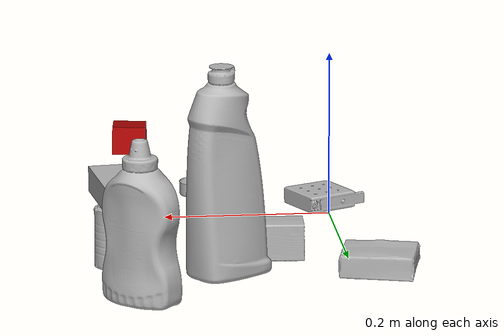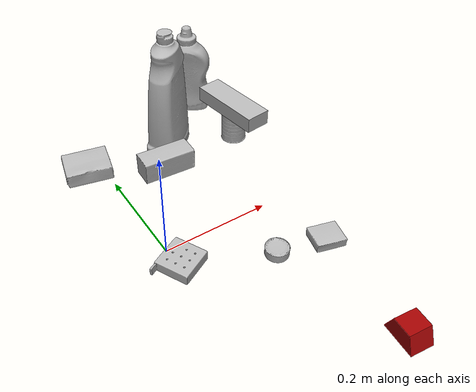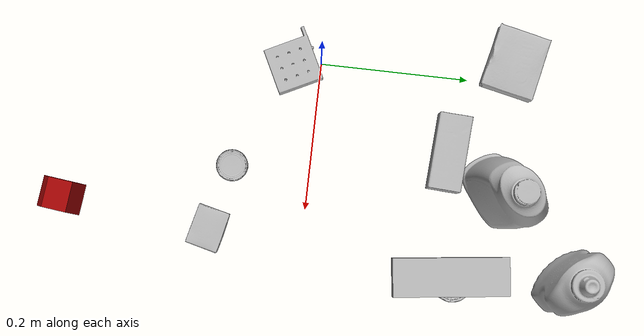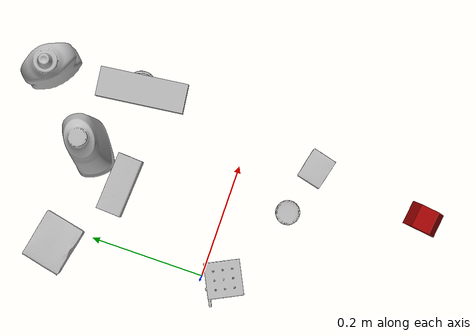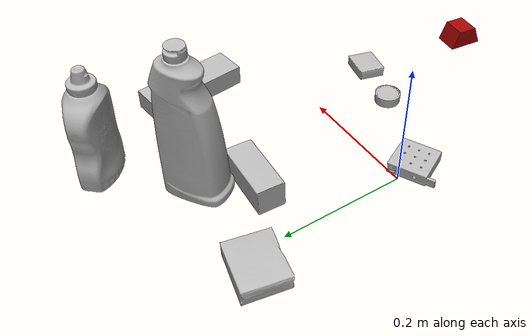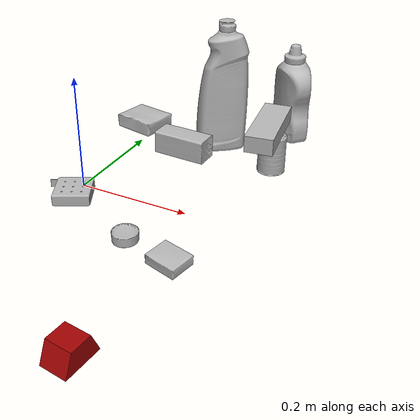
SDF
<sdf version="1.4">
  <world name="default">
    <light name="light1" type="point">
      <pose>0 0 1 0 0 0</pose>
      <diffuse>3 3 3 1</diffuse>
      <specular>3 3 3 1</specular>
    </light>
    <light name="light2" type="point">
      <pose>0 0.5 2 0 0 0</pose>
      <diffuse>1 1 1 1</diffuse>
      <specular>1 1 1 1</specular>
    </light>
    <light name="light3" type="point">
      <pose>0 0.5 2 0 0 0</pose>
      <diffuse>3 3 3 1</diffuse>
      <specular>3 3 3 1</specular>
    </light>
    <scene>
      <ambient>0.7 0.7 0.7</ambient>
    </scene>
    <model name="bottle1">
      <link name="link_bottle1">
        <collision name="default">
          <geometry>
            <mesh>
              <uri>model://mustard_bottle/collision_meshes/collision.obj</uri>
              <scale>1.0 1.0 1.0</scale>
            </mesh>
          </geometry>
          <surface>
            <friction>
              <ode>
                <mu>0.5</mu>
                <mu2>0.5</mu2>
              </ode>
            </friction>
          <contact>
        <ode>
            <max_vel>0</max_vel>
            <min_depth>0.0001</min_depth>
            <kp>1e8</kp>
        </ode>
    </contact></surface>
        </collision>
        <visual name="default">
          <geometry>
            <mesh>
              <uri>model://mustard_bottle/visual_meshes/visual.dae</uri>
              <scale>1.0 1.0 1.0</scale>
            </mesh>
          </geometry>
        </visual>
        <inertial>
          <mass>0.6762011647224426</mass>
          <pose>0.0005032454500906169 -0.00015647402324248105 -0.0174757931381464 0.0004182330054410876 0.0009465793907204819 0.02485376893997312</pose>
          <inertia>
            <ixx>0.001877718</ixx>
            <iyy>0.0016475386</iyy>
            <izz>0.0004948735</izz>
            <ixy>0</ixy>
            <ixz>0</ixz>
            <iyz>0</iyz>
          </inertia>
        </inertial>
      </link>
      <pose>0.25668439269065857 0.3574558198451996 0.09583088755607605 -0.012051313182601855 -0.004888878832031105 -2.3371418132859554</pose>
    </model>
    <model name="bottle2">
      <link name="link_bottle2">
        <collision name="default">
          <geometry>
            <mesh>
              <uri>model://bleach_cleanser/collision_meshes/collision.obj</uri>
              <scale>1.0 1.0 1.0</scale>
            </mesh>
          </geometry>
          <surface>
            <friction>
              <ode>
                <mu>0.5</mu>
                <mu2>0.5</mu2>
              </ode>
            </friction>
          <contact>
        <ode>
            <max_vel>0</max_vel>
            <min_depth>0.0001</min_depth>
            <kp>1e8</kp>
        </ode>
    </contact></surface>
        </collision>
        <visual name="default">
          <geometry>
            <mesh>
              <uri>model://bleach_cleanser/visual_meshes/visual.dae</uri>
              <scale>1.0 1.0 1.0</scale>
            </mesh>
          </geometry>
        </visual>
        <inertial>
          <mass>1.3947629928588867</mass>
          <pose>0.00012193183647468686 0.0037838828284293413 -0.02442161738872528 -0.07381670616230765 0.000420115363335565 -0.006875068774372656</pose>
          <inertia>
            <ixx>0.0067885136</ixx>
            <iyy>0.006325901</iyy>
            <izz>0.0011606595</izz>
            <ixy>0</ixy>
            <ixz>0</ixz>
            <iyz>0</iyz>
          </inertia>
        </inertial>
      </link>
      <pose>0.1477469950914383 0.2531247138977051 0.12578415870666504 -0.00019973261770149628 1.700003804728437e-05 -0.9618199236573007</pose>
    </model>
    <model name="toy1">
      <link name="link_toy1">
        <collision name="default">
          <geometry>
            <mesh>
              <uri>model://nine_hole_peg_test/collision_meshes/collision.obj</uri>
              <scale>0.5 0.5 0.5</scale>
            </mesh>
          </geometry>
          <surface>
            <friction>
              <ode>
                <mu>0.5</mu>
                <mu2>0.5</mu2>
              </ode>
            </friction>
          <contact>
        <ode>
            <max_vel>0</max_vel>
            <min_depth>0.0001</min_depth>
            <kp>1e8</kp>
        </ode>
    </contact></surface>
        </collision>
        <visual name="default">
          <geometry>
            <mesh>
              <uri>model://nine_hole_peg_test/visual_meshes/visual.dae</uri>
              <scale>0.5 0.5 0.5</scale>
            </mesh>
          </geometry>
        </visual>
        <inertial>
          <mass>0.11556825786828995</mass>
          <pose>-0.0023086932487785816 -0.004823807626962662 1.3230343029135838e-05 -0.0014666797633517714 0.0007194158879745651 -0.6342419016734399</pose>
          <inertia>
            <ixx>4.5177487e-05</ixx>
            <iyy>4.2181746e-05</iyy>
            <izz>7.9164296e-05</izz>
            <ixy>0</ixy>
            <ixz>0</ixz>
            <iyz>0</iyz>
          </inertia>
        </inertial>
      </link>
      <pose>0.0012862365692853928 -0.0376395620405674 0.010385497473180294 -8.31653928015652e-09 9.672758973055515e-10 2.038885911534446</pose>
    </model>
    <model name="toy2">
      <link name="link_toy2">
        <collision name="default">
          <geometry>
            <mesh>
              <uri>model://prism/collision_meshes/collision.obj</uri>
              <scale>0.5 0.5 0.5</scale>
            </mesh>
          </geometry>
          <surface>
            <friction>
              <ode>
                <mu>0.5</mu>
                <mu2>0.5</mu2>
              </ode>
            </friction>
          <contact>
        <ode>
            <max_vel>0</max_vel>
            <min_depth>0.0001</min_depth>
            <kp>1e8</kp>
        </ode>
    </contact></surface>
        </collision>
        <visual name="default">
          <geometry>
            <mesh>
              <uri>model://prism/visual_meshes/visual.dae</uri>
              <scale>0.5 0.5 0.5</scale>
            </mesh>
          </geometry>
        </visual>
        <inertial>
          <mass>0.033433690667152405</mass>
          <pose>-4.9267986469203606e-05 -2.480786349678965e-07 -0.001693455153144896 0.0 0.00655918030046738 0.0</pose>
          <inertia>
            <ixx>7.543374e-06</ixx>
            <iyy>9.116264e-06</iyy>
            <izz>1.1166334e-05</izz>
            <ixy>0</ixy>
            <ixz>0</ixz>
            <iyz>0</iyz>
          </inertia>
        </inertial>
      </link>
      <pose>0.2179996371269226 -0.3309188485145569 0.016085000708699226 -2.4824054228878022e-08 2.394026160248972e-08 1.4535161887791928</pose>
    </model>
    <model name="can1">
      <link name="link_can1">
        <collision name="default">
          <geometry>
            <mesh>
              <uri>model://master_chef_can/collision_meshes/collision.obj</uri>
              <scale>0.5 0.5 0.5</scale>
            </mesh>
          </geometry>
          <surface>
            <friction>
              <ode>
                <mu>0.5</mu>
                <mu2>0.5</mu2>
              </ode>
            </friction>
          <contact>
        <ode>
            <max_vel>0</max_vel>
            <min_depth>0.0001</min_depth>
            <kp>1e8</kp>
        </ode>
    </contact></surface>
        </collision>
        <visual name="default">
          <geometry>
            <mesh>
              <uri>model://master_chef_can/visual_meshes/visual.dae</uri>
              <scale>0.5 0.5 0.5</scale>
            </mesh>
          </geometry>
        </visual>
        <inertial>
          <mass>0.10766725987195969</mass>
          <pose>-4.661964703700505e-05 1.3926853625889635e-07 -5.079878610558808e-05 -0.0017995160150511523 0.000647916474058074 -0.6102670332280266</pose>
          <inertia>
            <ixx>6.319339e-05</ixx>
            <iyy>6.2728286e-05</iyy>
            <izz>3.491918e-05</izz>
            <ixy>0</ixy>
            <ixz>0</ixz>
            <iyz>0</iyz>
          </inertia>
        </inertial>
      </link>
      <pose>0.2738032639026642 0.20204459130764008 0.03530150279402733 -4.633312874218479e-05 -7.464529130793853e-05 1.8985046012385427</pose>
    </model>
    <model name="can2">
      <link name="link_can2">
        <collision name="default">
          <geometry>
            <mesh>
              <uri>model://tuna_fish_can/collision_meshes/collision.obj</uri>
              <scale>0.5 0.5 0.5</scale>
            </mesh>
          </geometry>
          <surface>
            <friction>
              <ode>
                <mu>0.5</mu>
                <mu2>0.5</mu2>
              </ode>
            </friction>
          <contact>
        <ode>
            <max_vel>0</max_vel>
            <min_depth>0.0001</min_depth>
            <kp>1e8</kp>
        </ode>
    </contact></surface>
        </collision>
        <visual name="default">
          <geometry>
            <mesh>
              <uri>model://tuna_fish_can/visual_meshes/visual.dae</uri>
              <scale>0.5 0.5 0.5</scale>
            </mesh>
          </geometry>
        </visual>
        <inertial>
          <mass>0.02740846574306488</mass>
          <pose>-2.0361561837489717e-05 -7.256384378706571e-06 -0.0005269024986773729 -0.0017944791545750336 0.000171617609773777 0.24054039995463303</pose>
          <inertia>
            <ixx>3.7056664e-06</ixx>
            <iyy>3.6902204e-06</iyy>
            <izz>6.3409243e-06</izz>
            <ixy>0</ixy>
            <ixz>0</ixz>
            <iyz>0</iyz>
          </inertia>
        </inertial>
      </link>
      <pose>0.15202896296977997 -0.10437332093715668 0.008520001545548439 -4.4506825050336e-09 -6.453271210504571e-09 0.10567965942213127</pose>
    </model>
    <model name="box1">
      <link name="link_box1">
        <collision name="default">
          <geometry>
            <mesh>
              <uri>model://gelatin_box/collision_meshes/collision.obj</uri>
              <scale>1.0 1.0 1.0</scale>
            </mesh>
          </geometry>
          <surface>
            <friction>
              <ode>
                <mu>0.5</mu>
                <mu2>0.5</mu2>
              </ode>
            </friction>
          <contact>
        <ode>
            <max_vel>0</max_vel>
            <min_depth>0.0001</min_depth>
            <kp>1e8</kp>
        </ode>
    </contact></surface>
        </collision>
        <visual name="default">
          <geometry>
            <mesh>
              <uri>model://gelatin_box/visual_meshes/visual.dae</uri>
              <scale>1.0 1.0 1.0</scale>
            </mesh>
          </geometry>
        </visual>
        <inertial>
          <mass>0.1693437397480011</mass>
          <pose>0.0004319618456065655 0.00011156872642459348 -0.00036403213744051754 -0.0010503721973280913 -0.004755817758053359 0.01644055760876268</pose>
          <inertia>
            <ixx>0.00011954286</ixx>
            <iyy>8.538885e-05</iyy>
            <izz>0.0001819709</izz>
            <ixy>0</ixy>
            <ixz>0</ixz>
            <iyz>0</iyz>
          </inertia>
        </inertial>
      </link>
      <pose>-0.02910752408206463 0.261062353849411 0.01516831573098898 0.005597472415111581 -0.007304589452638863 -1.7929021030064065</pose>
    </model>
    <model name="box2">
      <link name="link_box2">
        <collision name="default">
          <geometry>
            <mesh>
              <uri>model://pudding_box/collision_meshes/collision.obj</uri>
              <scale>0.5 0.5 0.5</scale>
            </mesh>
          </geometry>
          <surface>
            <friction>
              <ode>
                <mu>0.5</mu>
                <mu2>0.5</mu2>
              </ode>
            </friction>
          <contact>
        <ode>
            <max_vel>0</max_vel>
            <min_depth>0.0001</min_depth>
            <kp>1e8</kp>
        </ode>
    </contact></surface>
        </collision>
        <visual name="default">
          <geometry>
            <mesh>
              <uri>model://pudding_box/visual_meshes/visual.dae</uri>
              <scale>0.5 0.5 0.5</scale>
            </mesh>
          </geometry>
        </visual>
        <inertial>
          <mass>0.04695427790284157</mass>
          <pose>0.00024474109522998333 0.00040339428232982755 -0.0002594413817860186 0.005213102262859105 -0.0066037982576109796 0.020079825159299278</pose>
          <inertia>
            <ixx>1.3269848e-05</ixx>
            <iyy>8.9280475e-06</iyy>
            <izz>1.95964e-05</izz>
            <ixy>0</ixy>
            <ixz>0</ixz>
            <iyz>0</iyz>
          </inertia>
        </inertial>
      </link>
      <pose>0.23999203741550446 -0.12688249349594116 0.009862905368208885 0.022348482020993665 -0.011391736797988885 1.3292924650604232</pose>
    </model>
    <model name="box3">
      <link name="link_box3">
        <collision name="default">
          <geometry>
            <mesh>
              <uri>model://wood_block/collision_meshes/collision.obj</uri>
              <scale>0.5 0.5 0.5</scale>
            </mesh>
          </geometry>
          <surface>
            <friction>
              <ode>
                <mu>0.5</mu>
                <mu2>0.5</mu2>
              </ode>
            </friction>
          <contact>
        <ode>
            <max_vel>0</max_vel>
            <min_depth>0.0001</min_depth>
            <kp>1e8</kp>
        </ode>
    </contact></surface>
        </collision>
        <visual name="default">
          <geometry>
            <mesh>
              <uri>model://wood_block/visual_meshes/visual.dae</uri>
              <scale>0.5 0.5 0.5</scale>
            </mesh>
          </geometry>
        </visual>
        <inertial>
          <mass>0.2591375410556793</mass>
          <pose>-2.9066577553749084e-06 -0.00028540476341731846 0.00013204291462898254 -0.05221026556657302 -0.005192695801982805 -0.006861378038707315</pose>
          <inertia>
            <ixx>8.669131e-05</ixx>
            <iyy>0.00027385785</iyy>
            <izz>0.00027283354</izz>
            <ixy>0</ixy>
            <ixz>0</ixz>
            <iyz>0</iyz>
          </inertia>
        </inertial>
      </link>
      <pose>0.1030571460723877 0.18423575162887573 0.022629253566265106 -0.005208595287664408 0.005718721743361017 -0.05644450720291572</pose>
    </model>
    <model name="box4">
      <link name="link_box4">
        <collision name="default">
          <geometry>
            <mesh>
              <uri>model://jenga/collision_meshes/collision.obj</uri>
              <scale>1.0 1.0 1.0</scale>
            </mesh>
          </geometry>
          <surface>
            <friction>
              <ode>
                <mu>0.5</mu>
                <mu2>0.5</mu2>
              </ode>
            </friction>
          <contact>
        <ode>
            <max_vel>0</max_vel>
            <min_depth>0.0001</min_depth>
            <kp>1e8</kp>
        </ode>
    </contact></surface>
        </collision>
        <visual name="default">
          <geometry>
            <mesh>
              <uri>model://jenga/visual_meshes/visual.dae</uri>
              <scale>1.0 1.0 1.0</scale>
            </mesh>
          </geometry>
        </visual>
        <inertial>
          <mass>0.14610815048217773</mass>
          <pose>-2.502855807051674e-07 -0.00010250010382151231 -4.092339804628864e-05 0.0 -7.342155186052628e-07 0.0</pose>
          <inertia>
            <ixx>4.043167e-05</ixx>
            <iyy>0.0002739639</iyy>
            <izz>0.00029247976</izz>
            <ixy>0</ixy>
            <ixz>0</ixz>
            <iyz>0</iyz>
          </inertia>
        </inertial>
      </link>
      <pose>0.26656949520111084 0.19680887460708618 0.085603266954422 7.926811787314206e-06 0.00015065395028835397 -1.4495879912682734</pose>
    </model>
  <physics type="ode">
      <max_contacts>50</max_contacts>
      <ode>
        <solver>
          <type>quick</type>
          <iters>75</iters>
        </solver>
        <constraints>
          <contact_max_correcting_vel>0</contact_max_correcting_vel>
          <contact_surface_layer>0</contact_surface_layer>
        </constraints>
      </ode>
    </physics></world>
</sdf>
